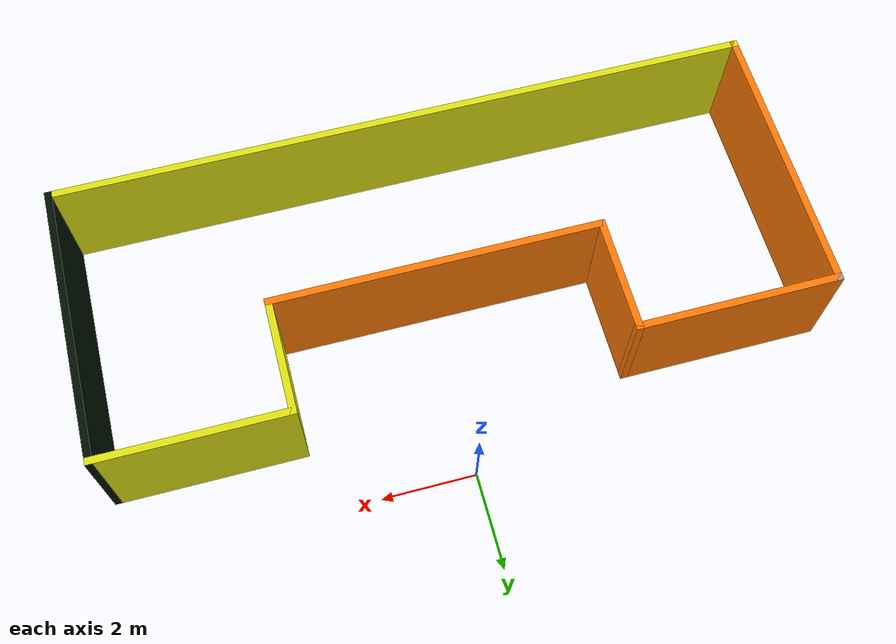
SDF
<?xml version='1.0'?>
<sdf version='1.6'>
  <model name='office'>
    <pose frame=''>-0.296238 -4.27444 0 0 -0 0</pose>
    <link name='Wall_10'>
      <collision name='Wall_10_Collision'>
        <geometry>
          <box>
            <size>0.15 0.15 2.5</size>
          </box>
        </geometry>
        <pose frame=''>0 0 1.25 0 -0 0</pose>
      </collision>
      <visual name='Wall_10_Visual'>
        <pose frame=''>0 0 1.25 0 -0 0</pose>
        <geometry>
          <box>
            <size>0.15 0.15 2.5</size>
          </box>
        </geometry>
        <material>
          <script>
            <uri>file://media/materials/scripts/gazebo.material</uri>
            <name>Gazebo/Grey</name>
          </script>
          <ambient>1 1 1 1</ambient>
        </material>
        <meta>
          <layer>0</layer>
        </meta>
      </visual>
      <pose frame=''>-7.425 2.925 0 0 -0 0</pose>
    </link>
    <link name='Wall_2'>
      <collision name='Wall_2_Collision'>
        <geometry>
          <box>
            <size>6 0.15 2.5</size>
          </box>
        </geometry>
        <pose frame=''>0 0 1.25 0 -0 0</pose>
      </collision>
      <visual name='Wall_2_Visual'>
        <pose frame=''>0 0 1.25 0 -0 0</pose>
        <geometry>
          <box>
            <size>6 0.15 2.5</size>
          </box>
        </geometry>
        <material>
          <script>
            <uri>file://media/materials/scripts/gazebo.material</uri>
            <name>Gazebo/Grey</name>
          </script>
          <ambient>0.996078 0.47451 0.0196078 1</ambient>
        </material>
        <meta>
          <layer>0</layer>
        </meta>
      </visual>
      <pose frame=''>-7.425 0 0 0 0 -1.5708</pose>
    </link>
    <link name='Wall_3'>
      <collision name='Wall_3_Collision'>
        <geometry>
          <box>
            <size>15 0.15 2.5</size>
          </box>
        </geometry>
        <pose frame=''>0 0 1.25 0 -0 0</pose>
      </collision>
      <visual name='Wall_3_Visual'>
        <pose frame=''>0 0 1.25 0 -0 0</pose>
        <geometry>
          <box>
            <size>15 0.15 2.5</size>
          </box>
        </geometry>
        <material>
          <script>
            <uri>file://media/materials/scripts/gazebo.material</uri>
            <name>Gazebo/Grey</name>
          </script>
          <ambient>0.870588 0.882353 0.0666667 1</ambient>
        </material>
        <meta>
          <layer>0</layer>
        </meta>
      </visual>
      <pose frame=''>0 -2.925 0 0 -0 0</pose>
    </link>
    <link name='Wall_4'>
      <collision name='Wall_4_Collision'>
        <geometry>
          <box>
            <size>6 0.15 2.5</size>
          </box>
        </geometry>
        <pose frame=''>0 0 1.25 0 -0 0</pose>
      </collision>
      <visual name='Wall_4_Visual'>
        <pose frame=''>0 0 1.25 0 -0 0</pose>
        <geometry>
          <box>
            <size>6 0.15 2.5</size>
          </box>
        </geometry>
        <material>
          <script>
            <uri>file://media/materials/scripts/gazebo.material</uri>
            <name>Gazebo/Grey</name>
          </script>
          <ambient>0 0.0588235 0 1</ambient>
        </material>
        <meta>
          <layer>0</layer>
        </meta>
      </visual>
      <pose frame=''>7.425 0 0 0 -0 1.5708</pose>
    </link>
    <link name='Wall_5'>
      <collision name='Wall_5_Collision'>
        <geometry>
          <box>
            <size>4 0.15 2.5</size>
          </box>
        </geometry>
        <pose frame=''>0 0 1.25 0 -0 0</pose>
      </collision>
      <visual name='Wall_5_Visual'>
        <pose frame=''>0 0 1.25 0 -0 0</pose>
        <geometry>
          <box>
            <size>4 0.15 2.5</size>
          </box>
        </geometry>
        <material>
          <script>
            <uri>file://media/materials/scripts/gazebo.material</uri>
            <name>Gazebo/Grey</name>
          </script>
          <ambient>0.870588 0.882353 0.0666667 1</ambient>
        </material>
        <meta>
          <layer>0</layer>
        </meta>
      </visual>
      <pose frame=''>5.5 2.925 0 0 -0 3.14159</pose>
    </link>
    <link name='Wall_6'>
      <collision name='Wall_6_Collision'>
        <geometry>
          <box>
            <size>2.5 0.15 2.5</size>
          </box>
        </geometry>
        <pose frame=''>0 0 1.25 0 -0 0</pose>
      </collision>
      <visual name='Wall_6_Visual'>
        <pose frame=''>0 0 1.25 0 -0 0</pose>
        <geometry>
          <box>
            <size>2.5 0.15 2.5</size>
          </box>
        </geometry>
        <material>
          <script>
            <uri>file://media/materials/scripts/gazebo.material</uri>
            <name>Gazebo/Grey</name>
          </script>
          <ambient>0.870588 0.882353 0.0666667 1</ambient>
        </material>
        <meta>
          <layer>0</layer>
        </meta>
      </visual>
      <pose frame=''>3.575 1.75 0 0 0 -1.5708</pose>
    </link>
    <link name='Wall_7'>
      <collision name='Wall_7_Collision'>
        <geometry>
          <box>
            <size>7 0.15 2.5</size>
          </box>
        </geometry>
        <pose frame=''>0 0 1.25 0 -0 0</pose>
      </collision>
      <visual name='Wall_7_Visual'>
        <pose frame=''>0 0 1.25 0 -0 0</pose>
        <geometry>
          <box>
            <size>7 0.15 2.5</size>
          </box>
        </geometry>
        <material>
          <script>
            <uri>file://media/materials/scripts/gazebo.material</uri>
            <name>Gazebo/Grey</name>
          </script>
          <ambient>0.996078 0.47451 0.0196078 1</ambient>
        </material>
        <meta>
          <layer>0</layer>
        </meta>
      </visual>
      <pose frame=''>0.15 0.575 0 0 -0 3.14159</pose>
    </link>
    <link name='Wall_8'>
      <collision name='Wall_8_Collision'>
        <geometry>
          <box>
            <size>2.5 0.15 2.5</size>
          </box>
        </geometry>
        <pose frame=''>0 0 1.25 0 -0 0</pose>
      </collision>
      <visual name='Wall_8_Visual'>
        <pose frame=''>0 0 1.25 0 -0 0</pose>
        <geometry>
          <box>
            <size>2.5 0.15 2.5</size>
          </box>
        </geometry>
        <material>
          <script>
            <uri>file://media/materials/scripts/gazebo.material</uri>
            <name>Gazebo/Grey</name>
          </script>
          <ambient>0.996078 0.47451 0.0196078 1</ambient>
        </material>
        <meta>
          <layer>0</layer>
        </meta>
      </visual>
      <pose frame=''>-3.275 1.75 0 0 -0 1.5708</pose>
    </link>
    <link name='Wall_9'>
      <collision name='Wall_9_Collision'>
        <geometry>
          <box>
            <size>4.3 0.15 2.5</size>
          </box>
        </geometry>
        <pose frame=''>0 0 1.25 0 -0 0</pose>
      </collision>
      <visual name='Wall_9_Visual'>
        <pose frame=''>0 0 1.25 0 -0 0</pose>
        <geometry>
          <box>
            <size>4.3 0.15 2.5</size>
          </box>
        </geometry>
        <material>
          <script>
            <uri>file://media/materials/scripts/gazebo.material</uri>
            <name>Gazebo/Grey</name>
          </script>
          <ambient>0.996078 0.47451 0.0196078 1</ambient>
        </material>
        <meta>
          <layer>0</layer>
        </meta>
      </visual>
      <pose frame=''>-5.35 2.925 0 0 -0 3.14159</pose>
    </link>
    <static>1</static>
  </model>
</sdf>
